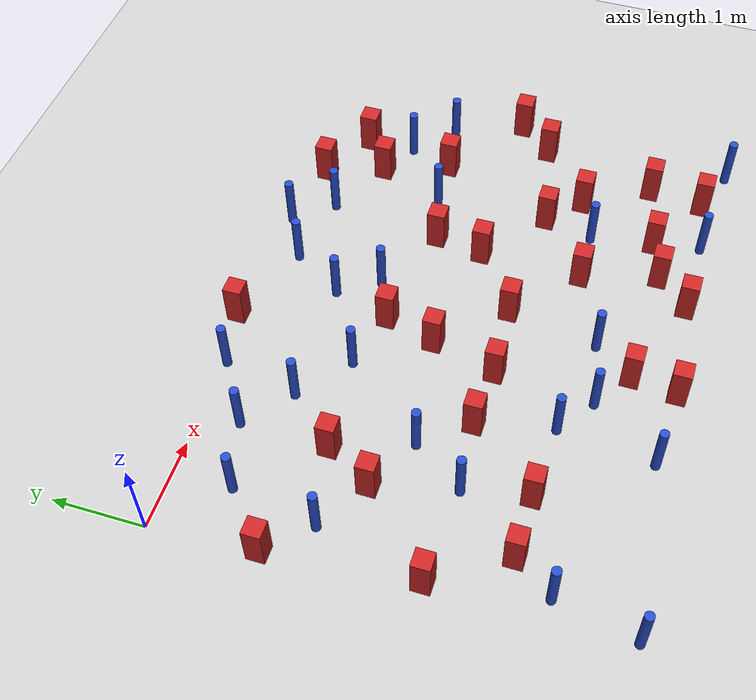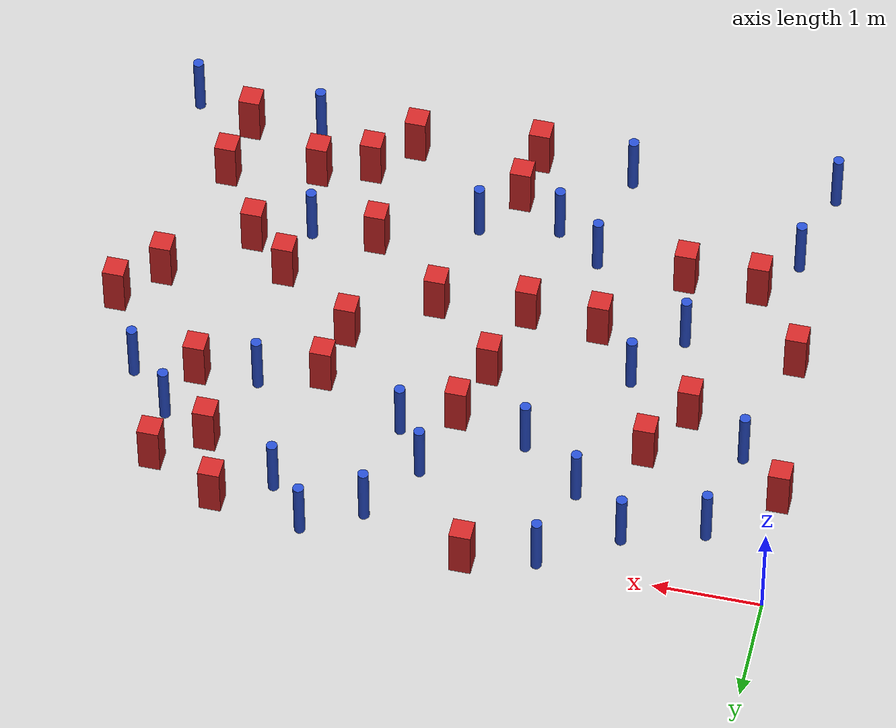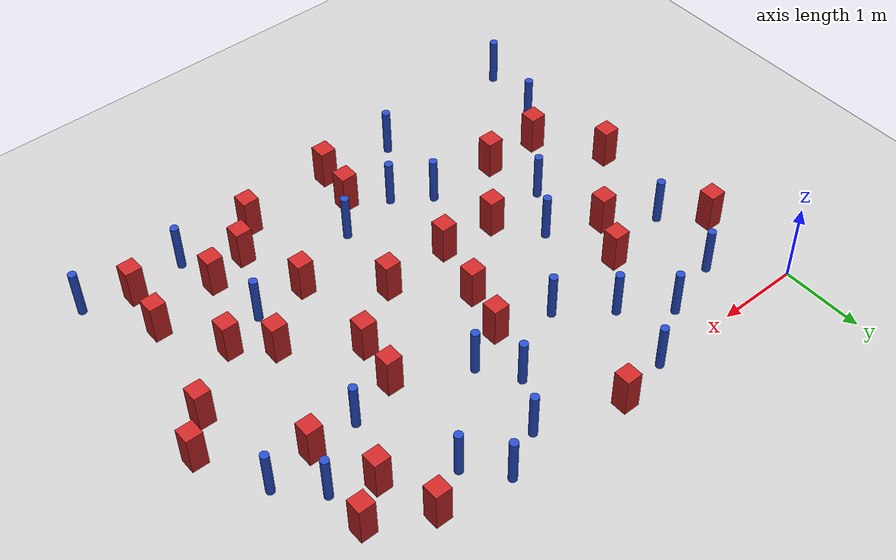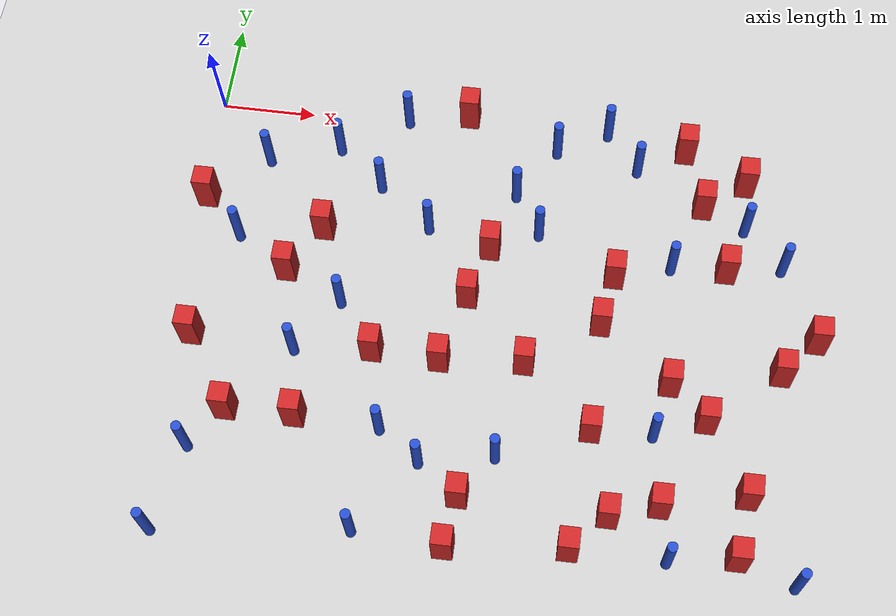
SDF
<sdf version="1.6">
 <world name="default">
  <model name="ground_plane">
   <static>1</static>
   <link name="link">
    <collision name="collision">
     <geometry><plane><normal>0 0 1</normal><size>100 100</size></plane></geometry>
     <surface><friction><ode><mu>100</mu><mu2>50</mu2></ode></friction></surface>
    </collision>
    <visual name="visual">
     <cast_shadows>0</cast_shadows>
     <geometry><plane><normal>0 0 1</normal><size>100 100</size></plane></geometry>
     <material>
      <ambient>1.0 1.0 1.0 1.0</ambient>
      <diffuse>0.8 0.8 0.8 1.0</diffuse>
      <specular>0.01 0.01 0.01 1.000000</specular>
     </material>
    </visual>
   </link>
  </model>
  <model name="square_post_obstacle1">
   <static>true</static>
   <pose>5.05377496867 -2.75790804852 1.91545236811e-07 -7.35059704564e-06 1.12565212e-07 2.39332434364e-05</pose>
   <link name="link">
    <pose>0 0 0.25 0 -0 0</pose>
    <inertial>
     <mass>100</mass>
     <inertia>
      <ixx>0.166667</ixx>
      <ixy>0</ixy>
      <ixz>0</ixz>
      <iyy>0.166667</iyy>
      <iyz>0</iyz>
      <izz>0.166667</izz>
     </inertia>
    </inertial>
    <collision name="collision"><geometry><box><size>.2 .2 .5</size></box></geometry></collision>
    <visual name="visual">
     <geometry><box><size>.2 .2 .5</size></box></geometry>
     <material>
      <script><name>Gazebo/Red</name><uri>file://media/materials/scripts/gazebo.material</uri></script>
     </material>
    </visual>
   </link>
  </model>
  <model name="pole_obstacle6">
   <static>true</static>
   <pose>6.13150018273 -1.35139949325 7.38925637345e-09 -8.471706928e-08 1.24976765134e-08 -1.74513093015e-07</pose>
   <link name="link">
    <pose>0 0 0.3 0 -0 0</pose>
    <inertial>
     <mass>1</mass>
     <inertia><ixx>0.145833</ixx><ixy>0</ixy><ixz>0</ixz><iyy>0.145833</iyy><iyz>0</iyz><izz>0.125</izz></inertia>
    </inertial>
    <collision name="collision">
     <geometry><cylinder><radius>0.05</radius><length>.6</length></cylinder></geometry>
    </collision>
    <visual name="visual">
     <geometry><cylinder><radius>0.05</radius><length>.6</length></cylinder></geometry>
     <material>
      <script><name>Gazebo/Blue</name><uri>file://media/materials/scripts/gazebo.material</uri></script>
     </material>
    </visual>
   </link>
  </model>
  <model name="square_post_obstacle7">
   <static>true</static>
   <pose>0.0717950030829 -1.15648471088 1.91545236811e-07 -7.35059704564e-06 1.12565212e-07 2.39332434364e-05</pose>
   <link name="link">
    <pose>0 0 0.25 0 -0 0</pose>
    <inertial>
     <mass>100</mass>
     <inertia>
      <ixx>0.166667</ixx>
      <ixy>0</ixy>
      <ixz>0</ixz>
      <iyy>0.166667</iyy>
      <iyz>0</iyz>
      <izz>0.166667</izz>
     </inertia>
    </inertial>
    <collision name="collision"><geometry><box><size>.2 .2 .5</size></box></geometry></collision>
    <visual name="visual">
     <geometry><box><size>.2 .2 .5</size></box></geometry>
     <material>
      <script><name>Gazebo/Red</name><uri>file://media/materials/scripts/gazebo.material</uri></script>
     </material>
    </visual>
   </link>
  </model>
  <model name="square_post_obstacle8">
   <static>true</static>
   <pose>3.11087227701 -1.44760078272 1.91545236811e-07 -7.35059704564e-06 1.12565212e-07 2.39332434364e-05</pose>
   <link name="link">
    <pose>0 0 0.25 0 -0 0</pose>
    <inertial>
     <mass>100</mass>
     <inertia>
      <ixx>0.166667</ixx>
      <ixy>0</ixy>
      <ixz>0</ixz>
      <iyy>0.166667</iyy>
      <iyz>0</iyz>
      <izz>0.166667</izz>
     </inertia>
    </inertial>
    <collision name="collision"><geometry><box><size>.2 .2 .5</size></box></geometry></collision>
    <visual name="visual">
     <geometry><box><size>.2 .2 .5</size></box></geometry>
     <material>
      <script><name>Gazebo/Red</name><uri>file://media/materials/scripts/gazebo.material</uri></script>
     </material>
    </visual>
   </link>
  </model>
  <model name="square_post_obstacle13">
   <static>true</static>
   <pose>5.03558104424 -4.01795418889 1.91545236811e-07 -7.35059704564e-06 1.12565212e-07 2.39332434364e-05</pose>
   <link name="link">
    <pose>0 0 0.25 0 -0 0</pose>
    <inertial>
     <mass>100</mass>
     <inertia>
      <ixx>0.166667</ixx>
      <ixy>0</ixy>
      <ixz>0</ixz>
      <iyy>0.166667</iyy>
      <iyz>0</iyz>
      <izz>0.166667</izz>
     </inertia>
    </inertial>
    <collision name="collision"><geometry><box><size>.2 .2 .5</size></box></geometry></collision>
    <visual name="visual">
     <geometry><box><size>.2 .2 .5</size></box></geometry>
     <material>
      <script><name>Gazebo/Red</name><uri>file://media/materials/scripts/gazebo.material</uri></script>
     </material>
    </visual>
   </link>
  </model>
  <model name="pole_obstacle18">
   <static>true</static>
   <pose>0.642495635217 -0.648046216748 7.38925637345e-09 -8.47170692799e-08 1.24976765008e-08 -1.7451309302e-07</pose>
   <link name="link">
    <pose>0 0 0.3 0 -0 0</pose>
    <inertial>
     <mass>1</mass>
     <inertia><ixx>0.145833</ixx><ixy>0</ixy><ixz>0</ixz><iyy>0.145833</iyy><iyz>0</iyz><izz>0.125</izz></inertia>
    </inertial>
    <collision name="collision">
     <geometry><cylinder><radius>0.05</radius><length>.6</length></cylinder></geometry>
    </collision>
    <visual name="visual">
     <geometry><cylinder><radius>0.05</radius><length>.6</length></cylinder></geometry>
     <material>
      <script><name>Gazebo/Blue</name><uri>file://media/materials/scripts/gazebo.material</uri></script>
     </material>
    </visual>
   </link>
  </model>
  <model name="square_post_obstacle14">
   <static>true</static>
   <pose>0.223443080172 -2.74164987059 1.91545236811e-07 -7.35059704564e-06 1.12565212e-07 2.39332434364e-05</pose>
   <link name="link">
    <pose>0 0 0.25 0 -0 0</pose>
    <inertial>
     <mass>100</mass>
     <inertia>
      <ixx>0.166667</ixx>
      <ixy>0</ixy>
      <ixz>0</ixz>
      <iyy>0.166667</iyy>
      <iyz>0</iyz>
      <izz>0.166667</izz>
     </inertia>
    </inertial>
    <collision name="collision"><geometry><box><size>.2 .2 .5</size></box></geometry></collision>
    <visual name="visual">
     <geometry><box><size>.2 .2 .5</size></box></geometry>
     <material>
      <script><name>Gazebo/Red</name><uri>file://media/materials/scripts/gazebo.material</uri></script>
     </material>
    </visual>
   </link>
  </model>
  <model name="pole_obstacle19">
   <static>true</static>
   <pose>2.25879578311 -3.54373088384 7.38925637345e-09 -8.47170692798e-08 1.24976764939e-08 -1.74513093025e-07</pose>
   <link name="link">
    <pose>0 0 0.3 0 -0 0</pose>
    <inertial>
     <mass>1</mass>
     <inertia><ixx>0.145833</ixx><ixy>0</ixy><ixz>0</ixz><iyy>0.145833</iyy><iyz>0</iyz><izz>0.125</izz></inertia>
    </inertial>
    <collision name="collision">
     <geometry><cylinder><radius>0.05</radius><length>.6</length></cylinder></geometry>
    </collision>
    <visual name="visual">
     <geometry><cylinder><radius>0.05</radius><length>.6</length></cylinder></geometry>
     <material>
      <script><name>Gazebo/Blue</name><uri>file://media/materials/scripts/gazebo.material</uri></script>
     </material>
    </visual>
   </link>
  </model>
  <model name="square_post_obstacle17">
   <static>true</static>
   <pose>4.32140525232 -2.18026834164 1.91545236811e-07 -7.35059704564e-06 1.12565212e-07 2.39332434364e-05</pose>
   <link name="link">
    <pose>0 0 0.25 0 -0 0</pose>
    <inertial>
     <mass>100</mass>
     <inertia>
      <ixx>0.166667</ixx>
      <ixy>0</ixy>
      <ixz>0</ixz>
      <iyy>0.166667</iyy>
      <iyz>0</iyz>
      <izz>0.166667</izz>
     </inertia>
    </inertial>
    <collision name="collision"><geometry><box><size>.2 .2 .5</size></box></geometry></collision>
    <visual name="visual">
     <geometry><box><size>.2 .2 .5</size></box></geometry>
     <material>
      <script><name>Gazebo/Red</name><uri>file://media/materials/scripts/gazebo.material</uri></script>
     </material>
    </visual>
   </link>
  </model>
  <model name="pole_obstacle20">
   <static>true</static>
   <pose>2.14244496518 -4.5869972805 7.38925637345e-09 -8.47170692798e-08 1.24976765033e-08 -1.74513093019e-07</pose>
   <link name="link">
    <pose>0 0 0.3 0 -0 0</pose>
    <inertial>
     <mass>1</mass>
     <inertia><ixx>0.145833</ixx><ixy>0</ixy><ixz>0</ixz><iyy>0.145833</iyy><iyz>0</iyz><izz>0.125</izz></inertia>
    </inertial>
    <collision name="collision">
     <geometry><cylinder><radius>0.05</radius><length>.6</length></cylinder></geometry>
    </collision>
    <visual name="visual">
     <geometry><cylinder><radius>0.05</radius><length>.6</length></cylinder></geometry>
     <material>
      <script><name>Gazebo/Blue</name><uri>file://media/materials/scripts/gazebo.material</uri></script>
     </material>
    </visual>
   </link>
  </model>
  <model name="pole_obstacle22">
   <static>true</static>
   <pose>2.44323972915 -1.27795119492 7.38925637345e-09 -8.471706928e-08 1.24976765152e-08 -1.74513093012e-07</pose>
   <link name="link">
    <pose>0 0 0.3 0 -0 0</pose>
    <inertial>
     <mass>1</mass>
     <inertia><ixx>0.145833</ixx><ixy>0</ixy><ixz>0</ixz><iyy>0.145833</iyy><iyz>0</iyz><izz>0.125</izz></inertia>
    </inertial>
    <collision name="collision">
     <geometry><cylinder><radius>0.05</radius><length>.6</length></cylinder></geometry>
    </collision>
    <visual name="visual">
     <geometry><cylinder><radius>0.05</radius><length>.6</length></cylinder></geometry>
     <material>
      <script><name>Gazebo/Blue</name><uri>file://media/materials/scripts/gazebo.material</uri></script>
     </material>
    </visual>
   </link>
  </model>
  <model name="pole_obstacle23">
   <static>true</static>
   <pose>2.05665425296 0.00220077827914 7.38925637345e-09 -8.47170692799e-08 1.24976765106e-08 -1.74513093016e-07</pose>
   <link name="link">
    <pose>0 0 0.3 0 -0 0</pose>
    <inertial>
     <mass>1</mass>
     <inertia><ixx>0.145833</ixx><ixy>0</ixy><ixz>0</ixz><iyy>0.145833</iyy><iyz>0</iyz><izz>0.125</izz></inertia>
    </inertial>
    <collision name="collision">
     <geometry><cylinder><radius>0.05</radius><length>.6</length></cylinder></geometry>
    </collision>
    <visual name="visual">
     <geometry><cylinder><radius>0.05</radius><length>.6</length></cylinder></geometry>
     <material>
      <script><name>Gazebo/Blue</name><uri>file://media/materials/scripts/gazebo.material</uri></script>
     </material>
    </visual>
   </link>
  </model>
  <model name="pole_obstacle37">
   <static>true</static>
   <pose>0.238201819289 -4.79390663588 7.38925637345e-09 -8.471706928e-08 1.24976765124e-08 -1.74513093014e-07</pose>
   <link name="link">
    <pose>0 0 0.3 0 -0 0</pose>
    <inertial>
     <mass>1</mass>
     <inertia><ixx>0.145833</ixx><ixy>0</ixy><ixz>0</ixz><iyy>0.145833</iyy><iyz>0</iyz><izz>0.125</izz></inertia>
    </inertial>
    <collision name="collision">
     <geometry><cylinder><radius>0.05</radius><length>.6</length></cylinder></geometry>
    </collision>
    <visual name="visual">
     <geometry><cylinder><radius>0.05</radius><length>.6</length></cylinder></geometry>
     <material>
      <script><name>Gazebo/Blue</name><uri>file://media/materials/scripts/gazebo.material</uri></script>
     </material>
    </visual>
   </link>
  </model>
  <model name="pole_obstacle39">
   <static>true</static>
   <pose>1.37561181793 -0.426412832539 7.38925637345e-09 -8.47170692799e-08 1.24976765065e-08 -1.74513093017e-07</pose>
   <link name="link">
    <pose>0 0 0.3 0 -0 0</pose>
    <inertial>
     <mass>1</mass>
     <inertia><ixx>0.145833</ixx><ixy>0</ixy><ixz>0</ixz><iyy>0.145833</iyy><iyz>0</iyz><izz>0.125</izz></inertia>
    </inertial>
    <collision name="collision">
     <geometry><cylinder><radius>0.05</radius><length>.6</length></cylinder></geometry>
    </collision>
    <visual name="visual">
     <geometry><cylinder><radius>0.05</radius><length>.6</length></cylinder></geometry>
     <material>
      <script><name>Gazebo/Blue</name><uri>file://media/materials/scripts/gazebo.material</uri></script>
     </material>
    </visual>
   </link>
  </model>
  <model name="square_post_obstacle36">
   <static>true</static>
   <pose>3.59640142316 -2.6926265953 1.91545236811e-07 -7.35059704564e-06 1.12565212e-07 2.39332434364e-05</pose>
   <link name="link">
    <pose>0 0 0.25 0 -0 0</pose>
    <inertial>
     <mass>100</mass>
     <inertia>
      <ixx>0.166667</ixx>
      <ixy>0</ixy>
      <ixz>0</ixz>
      <iyy>0.166667</iyy>
      <iyz>0</iyz>
      <izz>0.166667</izz>
     </inertia>
    </inertial>
    <collision name="collision"><geometry><box><size>.2 .2 .5</size></box></geometry></collision>
    <visual name="visual">
     <geometry><box><size>.2 .2 .5</size></box></geometry>
     <material>
      <script><name>Gazebo/Red</name><uri>file://media/materials/scripts/gazebo.material</uri></script>
     </material>
    </visual>
   </link>
  </model>
  <model name="square_post_obstacle63">
   <static>true</static>
   <pose>6.15545983524 -2.52267168401 1.91545236811e-07 -7.35059704564e-06 1.12565212e-07 2.39332434364e-05</pose>
   <link name="link">
    <pose>0 0 0.25 0 -0 0</pose>
    <inertial>
     <mass>100</mass>
     <inertia>
      <ixx>0.166667</ixx>
      <ixy>0</ixy>
      <ixz>0</ixz>
      <iyy>0.166667</iyy>
      <iyz>0</iyz>
      <izz>0.166667</izz>
     </inertia>
    </inertial>
    <collision name="collision"><geometry><box><size>.2 .2 .5</size></box></geometry></collision>
    <visual name="visual">
     <geometry><box><size>.2 .2 .5</size></box></geometry>
     <material>
      <script><name>Gazebo/Red</name><uri>file://media/materials/scripts/gazebo.material</uri></script>
     </material>
    </visual>
   </link>
  </model>
  <model name="pole_obstacle77">
   <static>true</static>
   <pose>3.68958990168 -0.201492658831 7.38925637345e-09 -8.47170692793e-08 1.24976764426e-08 -1.74513093041e-07</pose>
   <link name="link">
    <pose>0 0 0.3 0 -0 0</pose>
    <inertial>
     <mass>1</mass>
     <inertia><ixx>0.145833</ixx><ixy>0</ixy><ixz>0</ixz><iyy>0.145833</iyy><iyz>0</iyz><izz>0.125</izz></inertia>
    </inertial>
    <collision name="collision">
     <geometry><cylinder><radius>0.05</radius><length>.6</length></cylinder></geometry>
    </collision>
    <visual name="visual">
     <geometry><cylinder><radius>0.05</radius><length>.6</length></cylinder></geometry>
     <material>
      <script><name>Gazebo/Blue</name><uri>file://media/materials/scripts/gazebo.material</uri></script>
     </material>
    </visual>
   </link>
  </model>
  <model name="pole_obstacle85">
   <static>true</static>
   <pose>3.59459356284 -1.22115908292 7.38925637345e-09 -8.471706928e-08 1.24976765152e-08 -1.74513093012e-07</pose>
   <link name="link">
    <pose>0 0 0.3 0 -0 0</pose>
    <inertial>
     <mass>1</mass>
     <inertia><ixx>0.145833</ixx><ixy>0</ixy><ixz>0</ixz><iyy>0.145833</iyy><iyz>0</iyz><izz>0.125</izz></inertia>
    </inertial>
    <collision name="collision">
     <geometry><cylinder><radius>0.05</radius><length>.6</length></cylinder></geometry>
    </collision>
    <visual name="visual">
     <geometry><cylinder><radius>0.05</radius><length>.6</length></cylinder></geometry>
     <material>
      <script><name>Gazebo/Blue</name><uri>file://media/materials/scripts/gazebo.material</uri></script>
     </material>
    </visual>
   </link>
  </model>
  <model name="pole_obstacle87">
   <static>true</static>
   <pose>4.93154018264 -3.31278496451 7.38925637345e-09 -8.47170692798e-08 1.24976764937e-08 -1.74513093023e-07</pose>
   <link name="link">
    <pose>0 0 0.3 0 -0 0</pose>
    <inertial>
     <mass>1</mass>
     <inertia><ixx>0.145833</ixx><ixy>0</ixy><ixz>0</ixz><iyy>0.145833</iyy><iyz>0</iyz><izz>0.125</izz></inertia>
    </inertial>
    <collision name="collision">
     <geometry><cylinder><radius>0.05</radius><length>.6</length></cylinder></geometry>
    </collision>
    <visual name="visual">
     <geometry><cylinder><radius>0.05</radius><length>.6</length></cylinder></geometry>
     <material>
      <script><name>Gazebo/Blue</name><uri>file://media/materials/scripts/gazebo.material</uri></script>
     </material>
    </visual>
   </link>
  </model>
  <model name="square_post_obstacle75">
   <static>true</static>
   <pose>1.40955147665 -3.49951325364 1.91545236811e-07 -7.35059704564e-06 1.12565212e-07 2.39332434364e-05</pose>
   <link name="link">
    <pose>0 0 0.25 0 -0 0</pose>
    <inertial>
     <mass>100</mass>
     <inertia>
      <ixx>0.166667</ixx>
      <ixy>0</ixy>
      <ixz>0</ixz>
      <iyy>0.166667</iyy>
      <iyz>0</iyz>
      <izz>0.166667</izz>
     </inertia>
    </inertial>
    <collision name="collision"><geometry><box><size>.2 .2 .5</size></box></geometry></collision>
    <visual name="visual">
     <geometry><box><size>.2 .2 .5</size></box></geometry>
     <material>
      <script><name>Gazebo/Red</name><uri>file://media/materials/scripts/gazebo.material</uri></script>
     </material>
    </visual>
   </link>
  </model>
  <model name="square_post_obstacle81">
   <static>true</static>
   <pose>2.94463210627 -2.02186215636 1.91545236811e-07 -7.35059704564e-06 1.12565212e-07 2.39332434364e-05</pose>
   <link name="link">
    <pose>0 0 0.25 0 -0 0</pose>
    <inertial>
     <mass>100</mass>
     <inertia>
      <ixx>0.166667</ixx>
      <ixy>0</ixy>
      <ixz>0</ixz>
      <iyy>0.166667</iyy>
      <iyz>0</iyz>
      <izz>0.166667</izz>
     </inertia>
    </inertial>
    <collision name="collision"><geometry><box><size>.2 .2 .5</size></box></geometry></collision>
    <visual name="visual">
     <geometry><box><size>.2 .2 .5</size></box></geometry>
     <material>
      <script><name>Gazebo/Red</name><uri>file://media/materials/scripts/gazebo.material</uri></script>
     </material>
    </visual>
   </link>
  </model>
  <model name="square_post_obstacle85">
   <static>true</static>
   <pose>2.74663869422 -2.75519844943 1.91545236811e-07 -7.35059704564e-06 1.12565212e-07 2.39332434364e-05</pose>
   <link name="link">
    <pose>0 0 0.25 0 -0 0</pose>
    <inertial>
     <mass>100</mass>
     <inertia>
      <ixx>0.166667</ixx>
      <ixy>0</ixy>
      <ixz>0</ixz>
      <iyy>0.166667</iyy>
      <iyz>0</iyz>
      <izz>0.166667</izz>
     </inertia>
    </inertial>
    <collision name="collision"><geometry><box><size>.2 .2 .5</size></box></geometry></collision>
    <visual name="visual">
     <geometry><box><size>.2 .2 .5</size></box></geometry>
     <material>
      <script><name>Gazebo/Red</name><uri>file://media/materials/scripts/gazebo.material</uri></script>
     </material>
    </visual>
   </link>
  </model>
  <model name="pole_obstacle97">
   <static>true</static>
   <pose>1.2743224922 -2.80015866595 7.38925637345e-09 -8.47170692799e-08 1.24976765053e-08 -1.74513093017e-07</pose>
   <link name="link">
    <pose>0 0 0.3 0 -0 0</pose>
    <inertial>
     <mass>1</mass>
     <inertia><ixx>0.145833</ixx><ixy>0</ixy><ixz>0</ixz><iyy>0.145833</iyy><iyz>0</iyz><izz>0.125</izz></inertia>
    </inertial>
    <collision name="collision">
     <geometry><cylinder><radius>0.05</radius><length>.6</length></cylinder></geometry>
    </collision>
    <visual name="visual">
     <geometry><cylinder><radius>0.05</radius><length>.6</length></cylinder></geometry>
     <material>
      <script><name>Gazebo/Blue</name><uri>file://media/materials/scripts/gazebo.material</uri></script>
     </material>
    </visual>
   </link>
  </model>
  <model name="square_post_obstacle91">
   <static>true</static>
   <pose>4.20869624083 -4.53421016762 1.91545236811e-07 -7.35059704564e-06 1.12565212e-07 2.39332434364e-05</pose>
   <link name="link">
    <pose>0 0 0.25 0 -0 0</pose>
    <inertial>
     <mass>100</mass>
     <inertia>
      <ixx>0.166667</ixx>
      <ixy>0</ixy>
      <ixz>0</ixz>
      <iyy>0.166667</iyy>
      <iyz>0</iyz>
      <izz>0.166667</izz>
     </inertia>
    </inertial>
    <collision name="collision"><geometry><box><size>.2 .2 .5</size></box></geometry></collision>
    <visual name="visual">
     <geometry><box><size>.2 .2 .5</size></box></geometry>
     <material>
      <script><name>Gazebo/Red</name><uri>file://media/materials/scripts/gazebo.material</uri></script>
     </material>
    </visual>
   </link>
  </model>
  <model name="square_post_obstacle92">
   <static>true</static>
   <pose>0.721634923469 -3.50151668138 1.91545236811e-07 -7.35059704564e-06 1.12565212e-07 2.39332434364e-05</pose>
   <link name="link">
    <pose>0 0 0.25 0 -0 0</pose>
    <inertial>
     <mass>100</mass>
     <inertia>
      <ixx>0.166667</ixx>
      <ixy>0</ixy>
      <ixz>0</ixz>
      <iyy>0.166667</iyy>
      <iyz>0</iyz>
      <izz>0.166667</izz>
     </inertia>
    </inertial>
    <collision name="collision"><geometry><box><size>.2 .2 .5</size></box></geometry></collision>
    <visual name="visual">
     <geometry><box><size>.2 .2 .5</size></box></geometry>
     <material>
      <script><name>Gazebo/Red</name><uri>file://media/materials/scripts/gazebo.material</uri></script>
     </material>
    </visual>
   </link>
  </model>
  <model name="square_post_obstacle98">
   <static>true</static>
   <pose>4.31441056829 -3.32696252892 1.91545236811e-07 -7.35059704564e-06 1.12565212e-07 2.39332434364e-05</pose>
   <link name="link">
    <pose>0 0 0.25 0 -0 0</pose>
    <inertial>
     <mass>100</mass>
     <inertia>
      <ixx>0.166667</ixx>
      <ixy>0</ixy>
      <ixz>0</ixz>
      <iyy>0.166667</iyy>
      <iyz>0</iyz>
      <izz>0.166667</izz>
     </inertia>
    </inertial>
    <collision name="collision"><geometry><box><size>.2 .2 .5</size></box></geometry></collision>
    <visual name="visual">
     <geometry><box><size>.2 .2 .5</size></box></geometry>
     <material>
      <script><name>Gazebo/Red</name><uri>file://media/materials/scripts/gazebo.material</uri></script>
     </material>
    </visual>
   </link>
  </model>
  <model name="pole_obstacle109">
   <static>true</static>
   <pose>4.56240247256 -0.335276717116 7.38925637345e-09 -8.47170692798e-08 1.24976765003e-08 -1.7451309302e-07</pose>
   <link name="link">
    <pose>0 0 0.3 0 -0 0</pose>
    <inertial>
     <mass>1</mass>
     <inertia><ixx>0.145833</ixx><ixy>0</ixy><ixz>0</ixz><iyy>0.145833</iyy><iyz>0</iyz><izz>0.125</izz></inertia>
    </inertial>
    <collision name="collision">
     <geometry><cylinder><radius>0.05</radius><length>.6</length></cylinder></geometry>
    </collision>
    <visual name="visual">
     <geometry><cylinder><radius>0.05</radius><length>.6</length></cylinder></geometry>
     <material>
      <script><name>Gazebo/Blue</name><uri>file://media/materials/scripts/gazebo.material</uri></script>
     </material>
    </visual>
   </link>
  </model>
  <model name="pole_obstacle110">
   <static>true</static>
   <pose>2.68264245668 -3.84287999659 7.38925637345e-09 -8.47170692798e-08 1.24976764939e-08 -1.74513093025e-07</pose>
   <link name="link">
    <pose>0 0 0.3 0 -0 0</pose>
    <inertial>
     <mass>1</mass>
     <inertia><ixx>0.145833</ixx><ixy>0</ixy><ixz>0</ixz><iyy>0.145833</iyy><iyz>0</iyz><izz>0.125</izz></inertia>
    </inertial>
    <collision name="collision">
     <geometry><cylinder><radius>0.05</radius><length>.6</length></cylinder></geometry>
    </collision>
    <visual name="visual">
     <geometry><cylinder><radius>0.05</radius><length>.6</length></cylinder></geometry>
     <material>
      <script><name>Gazebo/Blue</name><uri>file://media/materials/scripts/gazebo.material</uri></script>
     </material>
    </visual>
   </link>
  </model>
  <model name="pole_obstacle114">
   <static>true</static>
   <pose>0.486488754022 -1.58220518746 7.38925637345e-09 -8.47170692798e-08 1.24976765018e-08 -1.7451309302e-07</pose>
   <link name="link">
    <pose>0 0 0.3 0 -0 0</pose>
    <inertial>
     <mass>1</mass>
     <inertia><ixx>0.145833</ixx><ixy>0</ixy><ixz>0</ixz><iyy>0.145833</iyy><iyz>0</iyz><izz>0.125</izz></inertia>
    </inertial>
    <collision name="collision">
     <geometry><cylinder><radius>0.05</radius><length>.6</length></cylinder></geometry>
    </collision>
    <visual name="visual">
     <geometry><cylinder><radius>0.05</radius><length>.6</length></cylinder></geometry>
     <material>
      <script><name>Gazebo/Blue</name><uri>file://media/materials/scripts/gazebo.material</uri></script>
     </material>
    </visual>
   </link>
  </model>
  <model name="square_post_obstacle116">
   <static>true</static>
   <pose>5.70976475472 -0.392007596728 1.91545236811e-07 -7.35059704564e-06 1.12565212e-07 2.39332434364e-05</pose>
   <link name="link">
    <pose>0 0 0.25 0 -0 0</pose>
    <inertial>
     <mass>100</mass>
     <inertia>
      <ixx>0.166667</ixx>
      <ixy>0</ixy>
      <ixz>0</ixz>
      <iyy>0.166667</iyy>
      <iyz>0</iyz>
      <izz>0.166667</izz>
     </inertia>
    </inertial>
    <collision name="collision"><geometry><box><size>.2 .2 .5</size></box></geometry></collision>
    <visual name="visual">
     <geometry><box><size>.2 .2 .5</size></box></geometry>
     <material>
      <script><name>Gazebo/Red</name><uri>file://media/materials/scripts/gazebo.material</uri></script>
     </material>
    </visual>
   </link>
  </model>
  <model name="pole_obstacle118">
   <static>true</static>
   <pose>0.418070524536 -3.92598344587 7.38925637345e-09 -8.471706928e-08 1.24976765084e-08 -1.74513093017e-07</pose>
   <link name="link">
    <pose>0 0 0.3 0 -0 0</pose>
    <inertial>
     <mass>1</mass>
     <inertia><ixx>0.145833</ixx><ixy>0</ixy><ixz>0</ixz><iyy>0.145833</iyy><iyz>0</iyz><izz>0.125</izz></inertia>
    </inertial>
    <collision name="collision">
     <geometry><cylinder><radius>0.05</radius><length>.6</length></cylinder></geometry>
    </collision>
    <visual name="visual">
     <geometry><cylinder><radius>0.05</radius><length>.6</length></cylinder></geometry>
     <material>
      <script><name>Gazebo/Blue</name><uri>file://media/materials/scripts/gazebo.material</uri></script>
     </material>
    </visual>
   </link>
  </model>
  <model name="square_post_obstacle121">
   <static>true</static>
   <pose>5.55626597954 -1.44063879195 1.91545236811e-07 -7.35059704564e-06 1.12565212e-07 2.39332434364e-05</pose>
   <link name="link">
    <pose>0 0 0.25 0 -0 0</pose>
    <inertial>
     <mass>100</mass>
     <inertia>
      <ixx>0.166667</ixx>
      <ixy>0</ixy>
      <ixz>0</ixz>
      <iyy>0.166667</iyy>
      <iyz>0</iyz>
      <izz>0.166667</izz>
     </inertia>
    </inertial>
    <collision name="collision"><geometry><box><size>.2 .2 .5</size></box></geometry></collision>
    <visual name="visual">
     <geometry><box><size>.2 .2 .5</size></box></geometry>
     <material>
      <script><name>Gazebo/Red</name><uri>file://media/materials/scripts/gazebo.material</uri></script>
     </material>
    </visual>
   </link>
  </model>
  <model name="square_post_obstacle132">
   <static>true</static>
   <pose>5.27916967319 -0.711439013721 1.91545236811e-07 -7.35059704564e-06 1.12565212e-07 2.39332434364e-05</pose>
   <link name="link">
    <pose>0 0 0.25 0 -0 0</pose>
    <inertial>
     <mass>100</mass>
     <inertia>
      <ixx>0.166667</ixx>
      <ixy>0</ixy>
      <ixz>0</ixz>
      <iyy>0.166667</iyy>
      <iyz>0</iyz>
      <izz>0.166667</izz>
     </inertia>
    </inertial>
    <collision name="collision"><geometry><box><size>.2 .2 .5</size></box></geometry></collision>
    <visual name="visual">
     <geometry><box><size>.2 .2 .5</size></box></geometry>
     <material>
      <script><name>Gazebo/Red</name><uri>file://media/materials/scripts/gazebo.material</uri></script>
     </material>
    </visual>
   </link>
  </model>
  <model name="pole_obstacle136">
   <static>true</static>
   <pose>4.99140783709 -1.46344197918 7.38925637345e-09 -8.471706928e-08 1.24976765134e-08 -1.74513093015e-07</pose>
   <link name="link">
    <pose>0 0 0.3 0 -0 0</pose>
    <inertial>
     <mass>1</mass>
     <inertia><ixx>0.145833</ixx><ixy>0</ixy><ixz>0</ixz><iyy>0.145833</iyy><iyz>0</iyz><izz>0.125</izz></inertia>
    </inertial>
    <collision name="collision">
     <geometry><cylinder><radius>0.05</radius><length>.6</length></cylinder></geometry>
    </collision>
    <visual name="visual">
     <geometry><cylinder><radius>0.05</radius><length>.6</length></cylinder></geometry>
     <material>
      <script><name>Gazebo/Blue</name><uri>file://media/materials/scripts/gazebo.material</uri></script>
     </material>
    </visual>
   </link>
  </model>
  <model name="pole_obstacle137">
   <static>true</static>
   <pose>6.35648605062 -4.65060910747 7.38925637345e-09 -8.47170692796e-08 1.24976764786e-08 -1.74513093032e-07</pose>
   <link name="link">
    <pose>0 0 0.3 0 -0 0</pose>
    <inertial>
     <mass>1</mass>
     <inertia><ixx>0.145833</ixx><ixy>0</ixy><ixz>0</ixz><iyy>0.145833</iyy><iyz>0</iyz><izz>0.125</izz></inertia>
    </inertial>
    <collision name="collision">
     <geometry><cylinder><radius>0.05</radius><length>.6</length></cylinder></geometry>
    </collision>
    <visual name="visual">
     <geometry><cylinder><radius>0.05</radius><length>.6</length></cylinder></geometry>
     <material>
      <script><name>Gazebo/Blue</name><uri>file://media/materials/scripts/gazebo.material</uri></script>
     </material>
    </visual>
   </link>
  </model>
  <model name="square_post_obstacle134">
   <static>true</static>
   <pose>5.43626861283 -3.10750668362 1.91545236811e-07 -7.35059704564e-06 1.12565212e-07 2.39332434364e-05</pose>
   <link name="link">
    <pose>0 0 0.25 0 -0 0</pose>
    <inertial>
     <mass>100</mass>
     <inertia>
      <ixx>0.166667</ixx>
      <ixy>0</ixy>
      <ixz>0</ixz>
      <iyy>0.166667</iyy>
      <iyz>0</iyz>
      <izz>0.166667</izz>
     </inertia>
    </inertial>
    <collision name="collision"><geometry><box><size>.2 .2 .5</size></box></geometry></collision>
    <visual name="visual">
     <geometry><box><size>.2 .2 .5</size></box></geometry>
     <material>
      <script><name>Gazebo/Red</name><uri>file://media/materials/scripts/gazebo.material</uri></script>
     </material>
    </visual>
   </link>
  </model>
  <model name="pole_obstacle140">
   <static>true</static>
   <pose>1.66322805472 -2.22733326793 7.38925637345e-09 -8.47170692799e-08 1.24976765053e-08 -1.74513093017e-07</pose>
   <link name="link">
    <pose>0 0 0.3 0 -0 0</pose>
    <inertial>
     <mass>1</mass>
     <inertia><ixx>0.145833</ixx><ixy>0</ixy><ixz>0</ixz><iyy>0.145833</iyy><iyz>0</iyz><izz>0.125</izz></inertia>
    </inertial>
    <collision name="collision">
     <geometry><cylinder><radius>0.05</radius><length>.6</length></cylinder></geometry>
    </collision>
    <visual name="visual">
     <geometry><cylinder><radius>0.05</radius><length>.6</length></cylinder></geometry>
     <material>
      <script><name>Gazebo/Blue</name><uri>file://media/materials/scripts/gazebo.material</uri></script>
     </material>
    </visual>
   </link>
  </model>
  <model name="square_post_obstacle138">
   <static>true</static>
   <pose>5.87096638637 -3.83423970026 1.91545236811e-07 -7.35059704564e-06 1.12565212e-07 2.39332434364e-05</pose>
   <link name="link">
    <pose>0 0 0.25 0 -0 0</pose>
    <inertial>
     <mass>100</mass>
     <inertia>
      <ixx>0.166667</ixx>
      <ixy>0</ixy>
      <ixz>0</ixz>
      <iyy>0.166667</iyy>
      <iyz>0</iyz>
      <izz>0.166667</izz>
     </inertia>
    </inertial>
    <collision name="collision"><geometry><box><size>.2 .2 .5</size></box></geometry></collision>
    <visual name="visual">
     <geometry><box><size>.2 .2 .5</size></box></geometry>
     <material>
      <script><name>Gazebo/Red</name><uri>file://media/materials/scripts/gazebo.material</uri></script>
     </material>
    </visual>
   </link>
  </model>
  <model name="square_post_obstacle139">
   <static>true</static>
   <pose>1.05451983709 -1.92509789391 1.91545236811e-07 -7.35059704564e-06 1.12565212e-07 2.39332434364e-05</pose>
   <link name="link">
    <pose>0 0 0.25 0 -0 0</pose>
    <inertial>
     <mass>100</mass>
     <inertia>
      <ixx>0.166667</ixx>
      <ixy>0</ixy>
      <ixz>0</ixz>
      <iyy>0.166667</iyy>
      <iyz>0</iyz>
      <izz>0.166667</izz>
     </inertia>
    </inertial>
    <collision name="collision"><geometry><box><size>.2 .2 .5</size></box></geometry></collision>
    <visual name="visual">
     <geometry><box><size>.2 .2 .5</size></box></geometry>
     <material>
      <script><name>Gazebo/Red</name><uri>file://media/materials/scripts/gazebo.material</uri></script>
     </material>
    </visual>
   </link>
  </model>
  <model name="square_post_obstacle144">
   <static>true</static>
   <pose>3.03773261061 -4.64733510478 1.91545236811e-07 -7.35059704564e-06 1.12565212e-07 2.39332434364e-05</pose>
   <link name="link">
    <pose>0 0 0.25 0 -0 0</pose>
    <inertial>
     <mass>100</mass>
     <inertia>
      <ixx>0.166667</ixx>
      <ixy>0</ixy>
      <ixz>0</ixz>
      <iyy>0.166667</iyy>
      <iyz>0</iyz>
      <izz>0.166667</izz>
     </inertia>
    </inertial>
    <collision name="collision"><geometry><box><size>.2 .2 .5</size></box></geometry></collision>
    <visual name="visual">
     <geometry><box><size>.2 .2 .5</size></box></geometry>
     <material>
      <script><name>Gazebo/Red</name><uri>file://media/materials/scripts/gazebo.material</uri></script>
     </material>
    </visual>
   </link>
  </model>
  <model name="square_post_obstacle147">
   <static>true</static>
   <pose>4.55236816334 -4.17012453949 1.91545236811e-07 -7.35059704564e-06 1.12565212e-07 2.39332434364e-05</pose>
   <link name="link">
    <pose>0 0 0.25 0 -0 0</pose>
    <inertial>
     <mass>100</mass>
     <inertia>
      <ixx>0.166667</ixx>
      <ixy>0</ixy>
      <ixz>0</ixz>
      <iyy>0.166667</iyy>
      <iyz>0</iyz>
      <izz>0.166667</izz>
     </inertia>
    </inertial>
    <collision name="collision"><geometry><box><size>.2 .2 .5</size></box></geometry></collision>
    <visual name="visual">
     <geometry><box><size>.2 .2 .5</size></box></geometry>
     <material>
      <script><name>Gazebo/Red</name><uri>file://media/materials/scripts/gazebo.material</uri></script>
     </material>
    </visual>
   </link>
  </model>
  <model name="square_post_obstacle148">
   <static>true</static>
   <pose>1.360204904 -1.40631621739 1.91545236811e-07 -7.35059704564e-06 1.12565212e-07 2.39332434364e-05</pose>
   <link name="link">
    <pose>0 0 0.25 0 -0 0</pose>
    <inertial>
     <mass>100</mass>
     <inertia>
      <ixx>0.166667</ixx>
      <ixy>0</ixy>
      <ixz>0</ixz>
      <iyy>0.166667</iyy>
      <iyz>0</iyz>
      <izz>0.166667</izz>
     </inertia>
    </inertial>
    <collision name="collision"><geometry><box><size>.2 .2 .5</size></box></geometry></collision>
    <visual name="visual">
     <geometry><box><size>.2 .2 .5</size></box></geometry>
     <material>
      <script><name>Gazebo/Red</name><uri>file://media/materials/scripts/gazebo.material</uri></script>
     </material>
    </visual>
   </link>
  </model>
  <model name="square_post_obstacle151">
   <static>true</static>
   <pose>2.70816700188 0.133437571241 1.91545236811e-07 -7.35059704564e-06 1.12565212e-07 2.39332434364e-05</pose>
   <link name="link">
    <pose>0 0 0.25 0 -0 0</pose>
    <inertial>
     <mass>100</mass>
     <inertia>
      <ixx>0.166667</ixx>
      <ixy>0</ixy>
      <ixz>0</ixz>
      <iyy>0.166667</iyy>
      <iyz>0</iyz>
      <izz>0.166667</izz>
     </inertia>
    </inertial>
    <collision name="collision"><geometry><box><size>.2 .2 .5</size></box></geometry></collision>
    <visual name="visual">
     <geometry><box><size>.2 .2 .5</size></box></geometry>
     <material>
      <script><name>Gazebo/Red</name><uri>file://media/materials/scripts/gazebo.material</uri></script>
     </material>
    </visual>
   </link>
  </model>
  <model name="pole_obstacle159">
   <static>true</static>
   <pose>5.72895018651 -0.93154768401 7.38925637345e-09 -8.47170692799e-08 1.24976765038e-08 -1.74513093018e-07</pose>
   <link name="link">
    <pose>0 0 0.3 0 -0 0</pose>
    <inertial>
     <mass>1</mass>
     <inertia><ixx>0.145833</ixx><ixy>0</ixy><ixz>0</ixz><iyy>0.145833</iyy><iyz>0</iyz><izz>0.125</izz></inertia>
    </inertial>
    <collision name="collision">
     <geometry><cylinder><radius>0.05</radius><length>.6</length></cylinder></geometry>
    </collision>
    <visual name="visual">
     <geometry><cylinder><radius>0.05</radius><length>.6</length></cylinder></geometry>
     <material>
      <script><name>Gazebo/Blue</name><uri>file://media/materials/scripts/gazebo.material</uri></script>
     </material>
    </visual>
   </link>
  </model>
  <model name="pole_obstacle163">
   <static>true</static>
   <pose>1.87700197041 -0.83881071846 7.38925637345e-09 -8.47170692799e-08 1.24976765075e-08 -1.74513093017e-07</pose>
   <link name="link">
    <pose>0 0 0.3 0 -0 0</pose>
    <inertial>
     <mass>1</mass>
     <inertia><ixx>0.145833</ixx><ixy>0</ixy><ixz>0</ixz><iyy>0.145833</iyy><iyz>0</iyz><izz>0.125</izz></inertia>
    </inertial>
    <collision name="collision">
     <geometry><cylinder><radius>0.05</radius><length>.6</length></cylinder></geometry>
    </collision>
    <visual name="visual">
     <geometry><cylinder><radius>0.05</radius><length>.6</length></cylinder></geometry>
     <material>
      <script><name>Gazebo/Blue</name><uri>file://media/materials/scripts/gazebo.material</uri></script>
     </material>
    </visual>
   </link>
  </model>
  <model name="square_post_obstacle156">
   <static>true</static>
   <pose>2.06193428425 -2.72123652524 1.91545236811e-07 -7.35059704564e-06 1.12565212e-07 2.39332434364e-05</pose>
   <link name="link">
    <pose>0 0 0.25 0 -0 0</pose>
    <inertial>
     <mass>100</mass>
     <inertia>
      <ixx>0.166667</ixx>
      <ixy>0</ixy>
      <ixz>0</ixz>
      <iyy>0.166667</iyy>
      <iyz>0</iyz>
      <izz>0.166667</izz>
     </inertia>
    </inertial>
    <collision name="collision"><geometry><box><size>.2 .2 .5</size></box></geometry></collision>
    <visual name="visual">
     <geometry><box><size>.2 .2 .5</size></box></geometry>
     <material>
      <script><name>Gazebo/Red</name><uri>file://media/materials/scripts/gazebo.material</uri></script>
     </material>
    </visual>
   </link>
  </model>
  <model name="square_post_obstacle169">
   <static>true</static>
   <pose>5.05873930283 -0.0542243034974 1.91545236811e-07 -7.35059704564e-06 1.12565212e-07 2.39332434364e-05</pose>
   <link name="link">
    <pose>0 0 0.25 0 -0 0</pose>
    <inertial>
     <mass>100</mass>
     <inertia>
      <ixx>0.166667</ixx>
      <ixy>0</ixy>
      <ixz>0</ixz>
      <iyy>0.166667</iyy>
      <iyz>0</iyz>
      <izz>0.166667</izz>
     </inertia>
    </inertial>
    <collision name="collision"><geometry><box><size>.2 .2 .5</size></box></geometry></collision>
    <visual name="visual">
     <geometry><box><size>.2 .2 .5</size></box></geometry>
     <material>
      <script><name>Gazebo/Red</name><uri>file://media/materials/scripts/gazebo.material</uri></script>
     </material>
    </visual>
   </link>
  </model>
  <model name="pole_obstacle171">
   <static>true</static>
   <pose>4.21566975183 0.0817240883681 7.38925637345e-09 -8.47170692799e-08 1.24976765066e-08 -1.74513093016e-07</pose>
   <link name="link">
    <pose>0 0 0.3 0 -0 0</pose>
    <inertial>
     <mass>1</mass>
     <inertia><ixx>0.145833</ixx><ixy>0</ixy><ixz>0</ixz><iyy>0.145833</iyy><iyz>0</iyz><izz>0.125</izz></inertia>
    </inertial>
    <collision name="collision">
     <geometry><cylinder><radius>0.05</radius><length>.6</length></cylinder></geometry>
    </collision>
    <visual name="visual">
     <geometry><cylinder><radius>0.05</radius><length>.6</length></cylinder></geometry>
     <material>
      <script><name>Gazebo/Blue</name><uri>file://media/materials/scripts/gazebo.material</uri></script>
     </material>
    </visual>
   </link>
  </model>
  <model name="pole_obstacle179">
   <static>true</static>
   <pose>3.42195435196 -3.70417192633 7.38925637345e-09 -8.47170692798e-08 1.24976764939e-08 -1.74513093025e-07</pose>
   <link name="link">
    <pose>0 0 0.3 0 -0 0</pose>
    <inertial>
     <mass>1</mass>
     <inertia><ixx>0.145833</ixx><ixy>0</ixy><ixz>0</ixz><iyy>0.145833</iyy><iyz>0</iyz><izz>0.125</izz></inertia>
    </inertial>
    <collision name="collision">
     <geometry><cylinder><radius>0.05</radius><length>.6</length></cylinder></geometry>
    </collision>
    <visual name="visual">
     <geometry><cylinder><radius>0.05</radius><length>.6</length></cylinder></geometry>
     <material>
      <script><name>Gazebo/Blue</name><uri>file://media/materials/scripts/gazebo.material</uri></script>
     </material>
    </visual>
   </link>
  </model>
  <model name="square_post_obstacle177">
   <static>true</static>
   <pose>6.49821941396 -2.12924900464 1.91545236811e-07 -7.35059704564e-06 1.12565212e-07 2.39332434364e-05</pose>
   <link name="link">
    <pose>0 0 0.25 0 -0 0</pose>
    <inertial>
     <mass>100</mass>
     <inertia>
      <ixx>0.166667</ixx>
      <ixy>0</ixy>
      <ixz>0</ixz>
      <iyy>0.166667</iyy>
      <iyz>0</iyz>
      <izz>0.166667</izz>
     </inertia>
    </inertial>
    <collision name="collision"><geometry><box><size>.2 .2 .5</size></box></geometry></collision>
    <visual name="visual">
     <geometry><box><size>.2 .2 .5</size></box></geometry>
     <material>
      <script><name>Gazebo/Red</name><uri>file://media/materials/scripts/gazebo.material</uri></script>
     </material>
    </visual>
   </link>
  </model>
  <model name="pole_obstacle185">
   <static>true</static>
   <pose>5.1431884907 -4.54751402393 7.38925637345e-09 -8.47170692796e-08 1.24976764786e-08 -1.74513093032e-07</pose>
   <link name="link">
    <pose>0 0 0.3 0 -0 0</pose>
    <inertial>
     <mass>1</mass>
     <inertia><ixx>0.145833</ixx><ixy>0</ixy><ixz>0</ixz><iyy>0.145833</iyy><iyz>0</iyz><izz>0.125</izz></inertia>
    </inertial>
    <collision name="collision">
     <geometry><cylinder><radius>0.05</radius><length>.6</length></cylinder></geometry>
    </collision>
    <visual name="visual">
     <geometry><cylinder><radius>0.05</radius><length>.6</length></cylinder></geometry>
     <material>
      <script><name>Gazebo/Blue</name><uri>file://media/materials/scripts/gazebo.material</uri></script>
     </material>
    </visual>
   </link>
  </model>
  <model name="square_post_obstacle188">
   <static>true</static>
   <pose>5.79535825057 -4.4471893848 1.91545236811e-07 -7.35059704564e-06 1.12565212e-07 2.39332434364e-05</pose>
   <link name="link">
    <pose>0 0 0.25 0 -0 0</pose>
    <inertial>
     <mass>100</mass>
     <inertia>
      <ixx>0.166667</ixx>
      <ixy>0</ixy>
      <ixz>0</ixz>
      <iyy>0.166667</iyy>
      <iyz>0</iyz>
      <izz>0.166667</izz>
     </inertia>
    </inertial>
    <collision name="collision"><geometry><box><size>.2 .2 .5</size></box></geometry></collision>
    <visual name="visual">
     <geometry><box><size>.2 .2 .5</size></box></geometry>
     <material>
      <script><name>Gazebo/Red</name><uri>file://media/materials/scripts/gazebo.material</uri></script>
     </material>
    </visual>
   </link>
  </model>
  <model name="pole_obstacle209">
   <static>true</static>
   <pose>3.3120218246 -0.78579623062 7.38925637345e-09 -8.471706928e-08 1.24976765177e-08 -1.74513093012e-07</pose>
   <link name="link">
    <pose>0 0 0.3 0 -0 0</pose>
    <inertial>
     <mass>1</mass>
     <inertia><ixx>0.145833</ixx><ixy>0</ixy><ixz>0</ixz><iyy>0.145833</iyy><iyz>0</iyz><izz>0.125</izz></inertia>
    </inertial>
    <collision name="collision">
     <geometry><cylinder><radius>0.05</radius><length>.6</length></cylinder></geometry>
    </collision>
    <visual name="visual">
     <geometry><cylinder><radius>0.05</radius><length>.6</length></cylinder></geometry>
     <material>
      <script><name>Gazebo/Blue</name><uri>file://media/materials/scripts/gazebo.material</uri></script>
     </material>
    </visual>
   </link>
  </model>
  <model name="square_post_obstacle210">
   <static>true</static>
   <pose>4.41527422691 -1.62943134109 1.91545236811e-07 -7.35059704564e-06 1.12565212e-07 2.39332434364e-05</pose>
   <link name="link">
    <pose>0 0 0.25 0 -0 0</pose>
    <inertial>
     <mass>100</mass>
     <inertia>
      <ixx>0.166667</ixx>
      <ixy>0</ixy>
      <ixz>0</ixz>
      <iyy>0.166667</iyy>
      <iyz>0</iyz>
      <izz>0.166667</izz>
     </inertia>
    </inertial>
    <collision name="collision"><geometry><box><size>.2 .2 .5</size></box></geometry></collision>
    <visual name="visual">
     <geometry><box><size>.2 .2 .5</size></box></geometry>
     <material>
      <script><name>Gazebo/Red</name><uri>file://media/materials/scripts/gazebo.material</uri></script>
     </material>
    </visual>
   </link>
  </model>
  <model name="square_post_obstacle220">
   <static>true</static>
   <pose>3.10866090122 -4.1375957294 1.91545236811e-07 -7.35059704564e-06 1.12565212e-07 2.39332434364e-05</pose>
   <link name="link">
    <pose>0 0 0.25 0 -0 0</pose>
    <inertial>
     <mass>100</mass>
     <inertia>
      <ixx>0.166667</ixx>
      <ixy>0</ixy>
      <ixz>0</ixz>
      <iyy>0.166667</iyy>
      <iyz>0</iyz>
      <izz>0.166667</izz>
     </inertia>
    </inertial>
    <collision name="collision"><geometry><box><size>.2 .2 .5</size></box></geometry></collision>
    <visual name="visual">
     <geometry><box><size>.2 .2 .5</size></box></geometry>
     <material>
      <script><name>Gazebo/Red</name><uri>file://media/materials/scripts/gazebo.material</uri></script>
     </material>
    </visual>
   </link>
  </model>
 </world>
</sdf>
